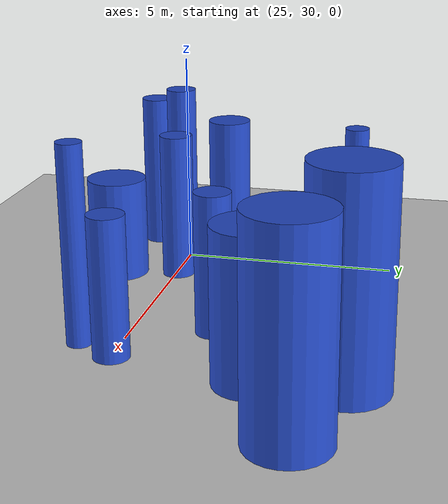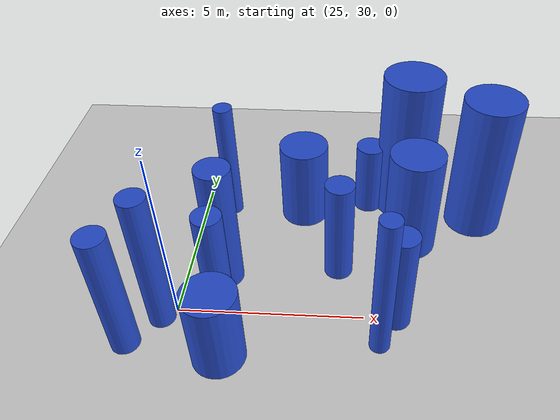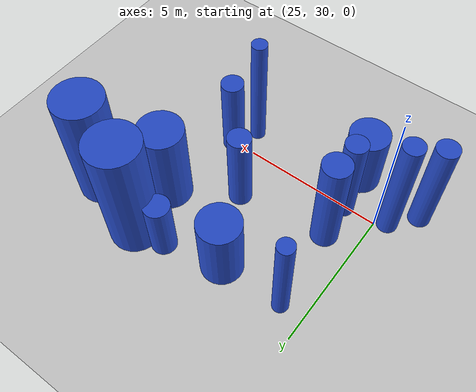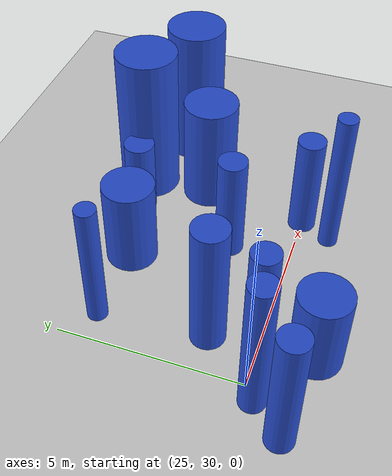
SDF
<sdf version="1.6">
 <world name="default">
  <model name="ground_plane">
   <static>1</static>
   <link name="link">
    <collision name="collision">
     <geometry><plane><normal>0 0 1</normal><size>100 100</size></plane></geometry>
     <surface><friction><ode><mu>100</mu><mu2>50</mu2></ode></friction></surface>
    </collision>
    <visual name="visual">
     <cast_shadows>0</cast_shadows>
     <geometry><plane><normal>0 0 1</normal><size>100 100</size></plane></geometry>
     <material>
      <script><uri>file://media/materials/scripts/gazebo.material</uri><name>Gazebo/Grey</name></script>
     </material>
    </visual>
   </link>
  </model>
  <model name="8">
   <static>0</static>
   <link name="link">
    <inertial>
     <mass>2</mass>
     <inertia><ixx>2.56634</ixx><ixy>0</ixy><ixz>0</ixz><iyy>2.56634</iyy><iyz>0</iyz><izz>0.222806</izz></inertia>
    </inertial>
    <collision name="collision">
     <geometry><cylinder><length>3.83792</length><radius>0.472024</radius></cylinder></geometry>
     <surface><contact><collide_without_contact>1</collide_without_contact></contact></surface>
    </collision>
    <visual name="visual">
     <geometry><cylinder><length>3.83792</length><radius>0.472024</radius></cylinder></geometry>
     <material>
      <script><uri>file://media/materials/scripts/gazebo.material</uri><name>Gazebo/Blue</name></script>
     </material>
    </visual>
    <gravity>0</gravity>
   </link>
   <pose>26.1172 31.3274 1.91896 0 -0 0</pose>
  </model>
  <model name="62">
   <static>0</static>
   <link name="link">
    <inertial>
     <mass>2</mass>
     <inertia><ixx>2.04969</ixx><ixy>0</ixy><ixz>0</ixz><iyy>2.04969</iyy><iyz>0</iyz><izz>0.595965</izz></inertia>
    </inertial>
    <collision name="collision">
     <geometry><cylinder><length>3.24195</length><radius>0.771988</radius></cylinder></geometry>
     <surface><contact><collide_without_contact>1</collide_without_contact></contact></surface>
    </collision>
    <visual name="visual">
     <geometry><cylinder><length>3.24195</length><radius>0.771988</radius></cylinder></geometry>
     <material>
      <script><uri>file://media/materials/scripts/gazebo.material</uri><name>Gazebo/Blue</name></script>
     </material>
    </visual>
    <gravity>0</gravity>
   </link>
   <pose>31.3314 33.0011 1.62098 0 -0 0</pose>
  </model>
  <model name="63">
   <static>0</static>
   <link name="link">
    <inertial>
     <mass>2</mass>
     <inertia><ixx>1.61709</ixx><ixy>0</ixy><ixz>0</ixz><iyy>1.61709</iyy><iyz>0</iyz><izz>0.150907</izz></inertia>
    </inertial>
    <collision name="collision">
     <geometry><cylinder><length>3.04135</length><radius>0.388467</radius></cylinder></geometry>
     <surface><contact><collide_without_contact>1</collide_without_contact></contact></surface>
    </collision>
    <visual name="visual">
     <geometry><cylinder><length>3.04135</length><radius>0.388467</radius></cylinder></geometry>
     <material>
      <script><uri>file://media/materials/scripts/gazebo.material</uri><name>Gazebo/Blue</name></script>
     </material>
    </visual>
    <gravity>0</gravity>
   </link>
   <pose>30.8493 30.0189 1.52067 0 -0 0</pose>
  </model>
  <model name="79">
   <static>0</static>
   <link name="link">
    <inertial>
     <mass>2</mass>
     <inertia><ixx>2.97852</ixx><ixy>0</ixy><ixz>0</ixz><iyy>2.97852</iyy><iyz>0</iyz><izz>0.125524</izz></inertia>
    </inertial>
    <collision name="collision">
     <geometry><cylinder><length>4.18265</length><radius>0.354294</radius></cylinder></geometry>
     <surface><contact><collide_without_contact>1</collide_without_contact></contact></surface>
    </collision>
    <visual name="visual">
     <geometry><cylinder><length>4.18265</length><radius>0.354294</radius></cylinder></geometry>
     <material>
      <script><uri>file://media/materials/scripts/gazebo.material</uri><name>Gazebo/Blue</name></script>
     </material>
    </visual>
    <gravity>0</gravity>
   </link>
   <pose>24.6514 29.743 2.09133 0 -0 0</pose>
  </model>
  <model name="100">
   <static>0</static>
   <link name="link">
    <inertial>
     <mass>2</mass>
     <inertia><ixx>1.16576</ixx><ixy>0</ixy><ixz>0</ixz><iyy>1.16576</iyy><iyz>0</iyz><izz>0.479179</izz></inertia>
    </inertial>
    <collision name="collision">
     <geometry><cylinder><length>2.35733</length><radius>0.692228</radius></cylinder></geometry>
     <surface><contact><collide_without_contact>1</collide_without_contact></contact></surface>
    </collision>
    <visual name="visual">
     <geometry><cylinder><length>2.35733</length><radius>0.692228</radius></cylinder></geometry>
     <material>
      <script><uri>file://media/materials/scripts/gazebo.material</uri><name>Gazebo/Blue</name></script>
     </material>
    </visual>
    <gravity>0</gravity>
   </link>
   <pose>26.3754 28.6172 1.17867 0 -0 0</pose>
  </model>
  <model name="102">
   <static>0</static>
   <link name="link">
    <inertial>
     <mass>2</mass>
     <inertia><ixx>2.03174</ixx><ixy>0</ixy><ixz>0</ixz><iyy>2.03174</iyy><iyz>0</iyz><izz>0.142404</izz></inertia>
    </inertial>
    <collision name="collision">
     <geometry><cylinder><length>3.42975</length><radius>0.377365</radius></cylinder></geometry>
     <surface><contact><collide_without_contact>1</collide_without_contact></contact></surface>
    </collision>
    <visual name="visual">
     <geometry><cylinder><length>3.42975</length><radius>0.377365</radius></cylinder></geometry>
     <material>
      <script><uri>file://media/materials/scripts/gazebo.material</uri><name>Gazebo/Blue</name></script>
     </material>
    </visual>
    <gravity>0</gravity>
   </link>
   <pose>26.1844 30.0475 1.71488 0 -0 0</pose>
  </model>
  <model name="120">
   <static>0</static>
   <link name="link">
    <inertial>
     <mass>2</mass>
     <inertia><ixx>1.34975</ixx><ixy>0</ixy><ixz>0</ixz><iyy>1.34975</iyy><iyz>0</iyz><izz>0.510108</izz></inertia>
    </inertial>
    <collision name="collision">
     <geometry><cylinder><length>2.56285</length><radius>0.714219</radius></cylinder></geometry>
     <surface><contact><collide_without_contact>1</collide_without_contact></contact></surface>
    </collision>
    <visual name="visual">
     <geometry><cylinder><length>2.56285</length><radius>0.714219</radius></cylinder></geometry>
     <material>
      <script><uri>file://media/materials/scripts/gazebo.material</uri><name>Gazebo/Blue</name></script>
     </material>
    </visual>
    <gravity>0</gravity>
   </link>
   <pose>28.1202 34.2139 1.28142 0 -0 0</pose>
  </model>
  <model name="136">
   <static>0</static>
   <link name="link">
    <inertial>
     <mass>2</mass>
     <inertia>
      <ixx>2.36535</ixx>
      <ixy>0</ixy>
      <ixz>0</ixz>
      <iyy>2.36535</iyy>
      <iyz>0</iyz>
      <izz>0.0754725</izz>
     </inertia>
    </inertial>
    <collision name="collision">
     <geometry><cylinder><length>3.73706</length><radius>0.274723</radius></cylinder></geometry>
     <surface><contact><collide_without_contact>1</collide_without_contact></contact></surface>
    </collision>
    <visual name="visual">
     <geometry><cylinder><length>3.73706</length><radius>0.274723</radius></cylinder></geometry>
     <material>
      <script><uri>file://media/materials/scripts/gazebo.material</uri><name>Gazebo/Blue</name></script>
     </material>
    </visual>
    <gravity>0</gravity>
   </link>
   <pose>25.8349 34.2419 1.86853 0 -0 0</pose>
  </model>
  <model name="154">
   <static>0</static>
   <link name="link">
    <inertial>
     <mass>2</mass>
     <inertia><ixx>1.7028</ixx><ixy>0</ixy><ixz>0</ixz><iyy>1.7028</iyy><iyz>0</iyz><izz>0.159402</izz></inertia>
    </inertial>
    <collision name="collision">
     <geometry><cylinder><length>3.12067</length><radius>0.399252</radius></cylinder></geometry>
     <surface><contact><collide_without_contact>1</collide_without_contact></contact></surface>
    </collision>
    <visual name="visual">
     <geometry><cylinder><length>3.12067</length><radius>0.399252</radius></cylinder></geometry>
     <material>
      <script><uri>file://media/materials/scripts/gazebo.material</uri><name>Gazebo/Blue</name></script>
     </material>
    </visual>
    <gravity>0</gravity>
   </link>
   <pose>29.2638 31.7399 1.56033 0 -0 0</pose>
  </model>
  <model name="174">
   <static>0</static>
   <link name="link">
    <inertial>
     <mass>2</mass>
     <inertia><ixx>3.44519</ixx><ixy>0</ixy><ixz>0</ixz><iyy>3.44519</iyy><iyz>0</iyz><izz>0.726752</izz></inertia>
    </inertial>
    <collision name="collision">
     <geometry><cylinder><length>4.3001</length><radius>0.852498</radius></cylinder></geometry>
     <surface><contact><collide_without_contact>1</collide_without_contact></contact></surface>
    </collision>
    <visual name="visual">
     <geometry><cylinder><length>4.3001</length><radius>0.852498</radius></cylinder></geometry>
     <material>
      <script><uri>file://media/materials/scripts/gazebo.material</uri><name>Gazebo/Blue</name></script>
     </material>
    </visual>
    <gravity>0</gravity>
   </link>
   <pose>33.3684 34.1408 2.15005 0 -0 0</pose>
  </model>
  <model name="180">
   <static>0</static>
   <link name="link">
    <inertial>
     <mass>2</mass>
     <inertia><ixx>2.42849</ixx><ixy>0</ixy><ixz>0</ixz><iyy>2.42849</iyy><iyz>0</iyz><izz>0.141849</izz></inertia>
    </inertial>
    <collision name="collision">
     <geometry><cylinder><length>3.76103</length><radius>0.376628</radius></cylinder></geometry>
     <surface><contact><collide_without_contact>1</collide_without_contact></contact></surface>
    </collision>
    <visual name="visual">
     <geometry><cylinder><length>3.76103</length><radius>0.376628</radius></cylinder></geometry>
     <material>
      <script><uri>file://media/materials/scripts/gazebo.material</uri><name>Gazebo/Blue</name></script>
     </material>
    </visual>
    <gravity>0</gravity>
   </link>
   <pose>23.9123 28.8909 1.88052 0 -0 0</pose>
  </model>
  <model name="196">
   <static>0</static>
   <link name="link">
    <inertial>
     <mass>2</mass>
     <inertia><ixx>0.9402</ixx><ixy>0</ixy><ixz>0</ixz><iyy>0.9402</iyy><iyz>0</iyz><izz>0.188047</izz></inertia>
    </inertial>
    <collision name="collision">
     <geometry><cylinder><length>2.25323</length><radius>0.433644</radius></cylinder></geometry>
     <surface><contact><collide_without_contact>1</collide_without_contact></contact></surface>
    </collision>
    <visual name="visual">
     <geometry><cylinder><length>2.25323</length><radius>0.433644</radius></cylinder></geometry>
     <material>
      <script><uri>file://media/materials/scripts/gazebo.material</uri><name>Gazebo/Blue</name></script>
     </material>
    </visual>
    <gravity>0</gravity>
   </link>
   <pose>30.1171 34.7223 1.12662 0 -0 0</pose>
  </model>
  <model name="220">
   <static>0</static>
   <link name="link">
    <inertial>
     <mass>2</mass>
     <inertia><ixx>3.82869</ixx><ixy>0</ixy><ixz>0</ixz><iyy>3.82869</iyy><iyz>0</iyz><izz>0.763171</izz></inertia>
    </inertial>
    <collision name="collision">
     <geometry><cylinder><length>4.54781</length><radius>0.873596</radius></cylinder></geometry>
     <surface><contact><collide_without_contact>1</collide_without_contact></contact></surface>
    </collision>
    <visual name="visual">
     <geometry><cylinder><length>4.54781</length><radius>0.873596</radius></cylinder></geometry>
     <material>
      <script><uri>file://media/materials/scripts/gazebo.material</uri><name>Gazebo/Blue</name></script>
     </material>
    </visual>
    <gravity>0</gravity>
   </link>
   <pose>31.2194 34.8639 2.27391 0 -0 0</pose>
  </model>
  <model name="231">
   <static>0</static>
   <link name="link">
    <inertial>
     <mass>2</mass>
     <inertia>
      <ixx>3.14707</ixx>
      <ixy>0</ixy>
      <ixz>0</ixz>
      <iyy>3.14707</iyy>
      <iyz>0</iyz>
      <izz>0.0736251</izz>
     </inertia>
    </inertial>
    <collision name="collision">
     <geometry><cylinder><length>4.3199</length><radius>0.271339</radius></cylinder></geometry>
     <surface><contact><collide_without_contact>1</collide_without_contact></contact></surface>
    </collision>
    <visual name="visual">
     <geometry><cylinder><length>4.3199</length><radius>0.271339</radius></cylinder></geometry>
     <material>
      <script><uri>file://media/materials/scripts/gazebo.material</uri><name>Gazebo/Blue</name></script>
     </material>
    </visual>
    <gravity>0</gravity>
   </link>
   <pose>30.4088 29.1587 2.15995 0 -0 0</pose>
  </model>
 </world>
</sdf>
